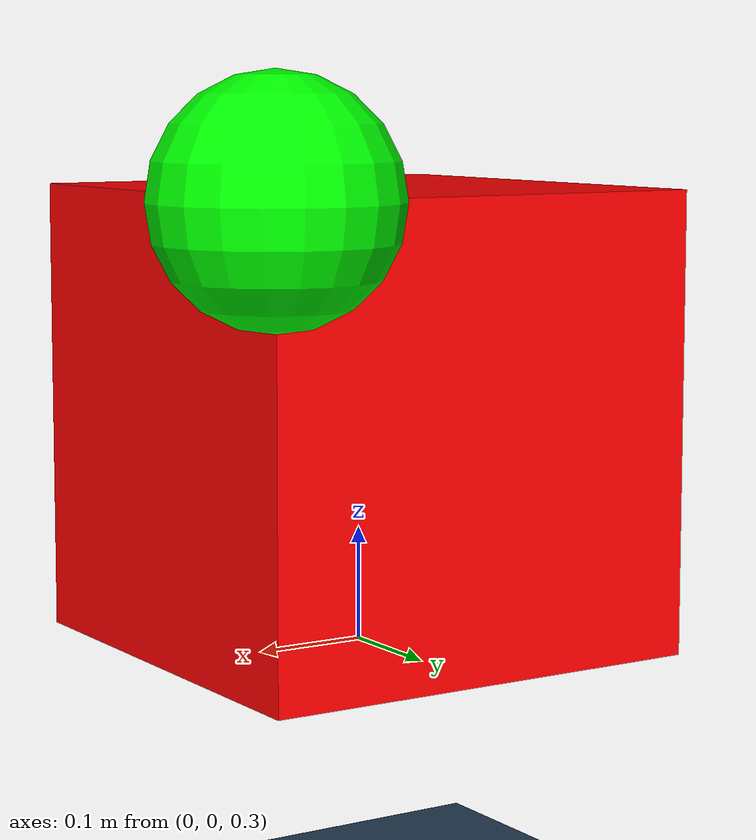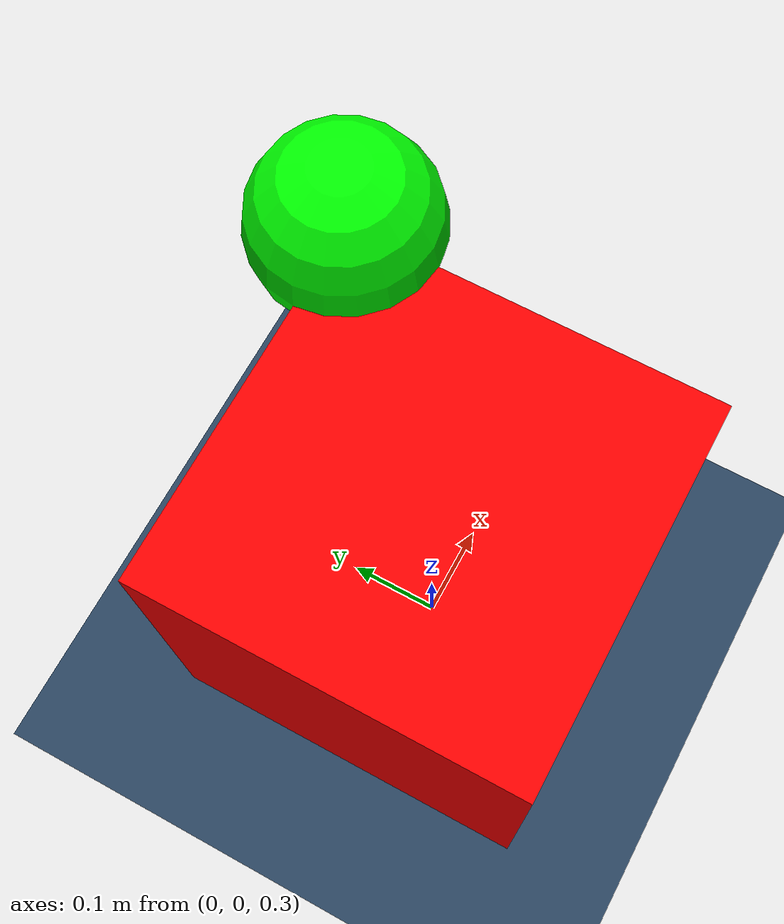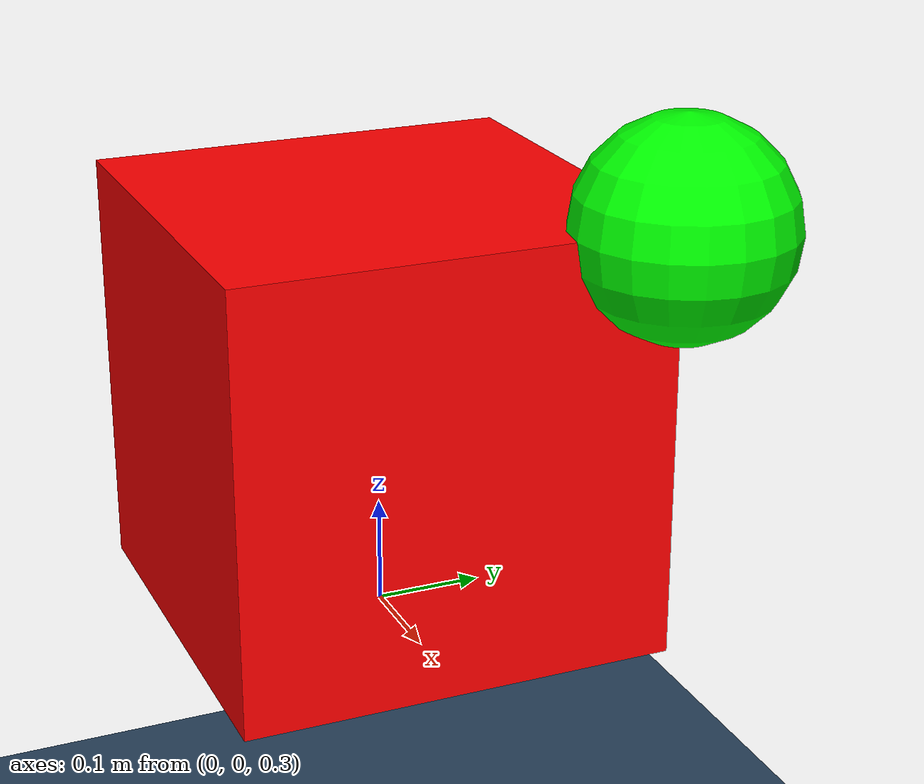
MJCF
<mujoco>
<option timestep="0.005" gravity="0 0 -9.81" integrator="RK4"/>
  <asset>
    <texture name="grid" type="2d" builtin="checker" rgb1=".1 .2 .3"
     rgb2=".2 .3 .4" width="300" height="300"/>
    <material name="grid" texture="grid" texrepeat="8 8" reflectance=".2"/>
  </asset>
  <worldbody>
    <geom size="1 1 .01" type="plane" material="grid"/>
    <light name="top" pos="0 0 0.6"/>
    <body name="box_and_sphere" pos="0 0 0.5" euler="0 0 0">
      <freejoint/>
      <geom name="red_box" type="box" size=".2 .2 .2" rgba="1 0 0 1"/>
      <geom name="green_sphere" pos=".2 .2 .2" size=".1" rgba="0 1 0 1"/>
    </body>
  </worldbody>
</mujoco>
